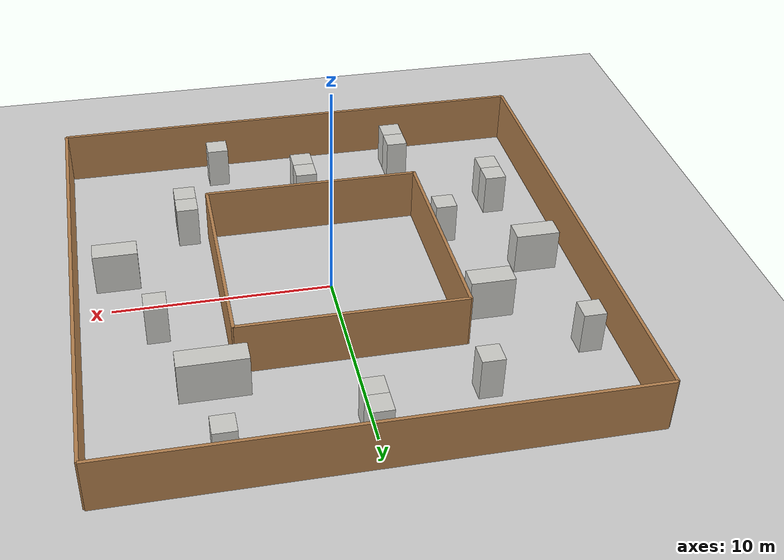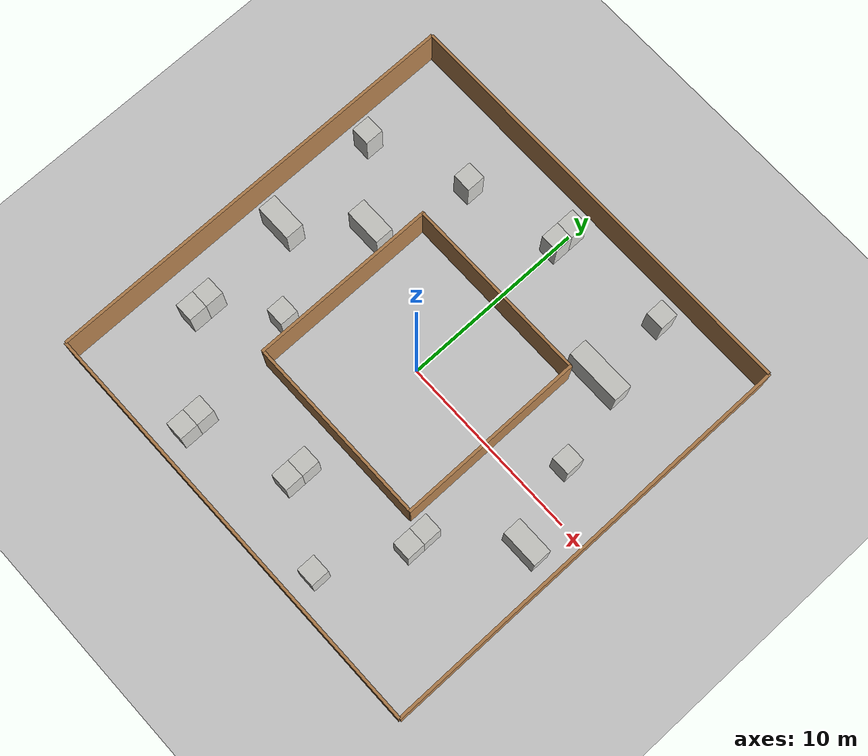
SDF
<sdf version="1.7">
 <world name="default">
  <light name="sun" type="directional">
   <pose>0 0 10 0 -0 0</pose>
   <diffuse>0.8 0.8 0.8 1</diffuse>
   <specular>0.2 0.2 0.2 1</specular>
   <attenuation>
    <range>1000</range>
    <constant>0.9</constant>
    <linear>0.01</linear>
    <quadratic>0.001</quadratic>
   </attenuation>
   <direction>-0.5 0.1 -0.9</direction>
   <spot><inner_angle>0</inner_angle><outer_angle>0</outer_angle><falloff>0</falloff></spot>
  </light>
  <model name="ground_plane">
   <static>1</static>
   <link name="link">
    <collision name="collision">
     <geometry><plane><normal>0 0 1</normal><size>100 100</size></plane></geometry>
     <surface>
      <contact><collide_bitmask>65535</collide_bitmask></contact>
      <friction><ode><mu>100</mu><mu2>50</mu2></ode></friction>
     </surface>
    </collision>
    <visual name="visual">
     <cast_shadows>0</cast_shadows>
     <geometry><plane><normal>0 0 1</normal><size>100 100</size></plane></geometry>
     <material>
      <script><uri>file://media/materials/scripts/gazebo.material</uri><name>Gazebo/Grey</name></script>
     </material>
    </visual>
   </link>
  </model>
  <gravity>0 0 -9.8</gravity>
  <magnetic_field>6e-06 2.3e-05 -4.2e-05</magnetic_field>
  <atmosphere type="adiabatic"/>
  <physics type="ode">
   <max_step_size>0.002</max_step_size>
   <real_time_factor>1</real_time_factor>
   <real_time_update_rate>500</real_time_update_rate>
  </physics>
  <scene><ambient>0.4 0.4 0.4 1</ambient><background>0.7 0.7 0.7 1</background><shadows>1</shadows></scene>
  <spherical_coordinates>
   <surface_model>EARTH_WGS84</surface_model>
   <latitude_deg>0</latitude_deg>
   <longitude_deg>0</longitude_deg>
   <elevation>0</elevation>
   <heading_deg>0</heading_deg>
  </spherical_coordinates>
  <model name="corridor">
   <link name="Wall_0">
    <collision name="Wall_0_Collision">
     <geometry><box><size>23.0 0.15 2.5</size></box></geometry>
     <pose>0 0 1.25 0 -0 0</pose>
    </collision>
    <visual name="Wall_0_Visual">
     <pose>0 0 1.25 0 -0 0</pose>
     <geometry><box><size>23.0 0.15 2.5</size></box></geometry>
     <material>
      <script><uri>file://media/materials/scripts/gazebo.material</uri><name>Gazebo/Wood</name></script>
      <ambient>1 1 1 1</ambient>
     </material>
     <meta><layer>0</layer></meta>
    </visual>
    <pose>0 11.5 0 0 -0 0</pose>
   </link>
   <link name="Wall_2">
    <collision name="Wall_2_Collision">
     <geometry><box><size>23.0 0.15 2.5</size></box></geometry>
     <pose>0 0 1.25 0 -0 0</pose>
    </collision>
    <visual name="Wall_2_Visual">
     <pose>0 0 1.25 0 -0 0</pose>
     <geometry><box><size>23.0 0.15 2.5</size></box></geometry>
     <material>
      <script><uri>file://media/materials/scripts/gazebo.material</uri><name>Gazebo/Wood</name></script>
      <ambient>1 1 1 1</ambient>
     </material>
     <meta><layer>0</layer></meta>
    </visual>
    <pose>0 -11.5 0 0 -0 0</pose>
   </link>
   <link name="Wall_4">
    <collision name="Wall_4_Collision">
     <geometry><box><size>23.0 0.15 2.5</size></box></geometry>
     <pose>0 0 1.25 0 -0 0</pose>
    </collision>
    <visual name="Wall_4_Visual">
     <pose>0 0 1.25 0 -0 0</pose>
     <geometry><box><size>23.0 0.15 2.5</size></box></geometry>
     <material>
      <script><uri>file://media/materials/scripts/gazebo.material</uri><name>Gazebo/Wood</name></script>
      <ambient>1 1 1 1</ambient>
     </material>
     <meta><layer>0</layer></meta>
    </visual>
    <pose>-11.5 0 0 0 -0 -1.5708</pose>
   </link>
   <link name="Wall_6">
    <collision name="Wall_6_Collision">
     <geometry><box><size>23.0 0.15 2.5</size></box></geometry>
     <pose>0 0 1.25 0 -0 0</pose>
    </collision>
    <visual name="Wall_6_Visual">
     <pose>0 0 1.25 0 -0 0</pose>
     <geometry><box><size>23.0 0.15 2.5</size></box></geometry>
     <material>
      <script><uri>file://media/materials/scripts/gazebo.material</uri><name>Gazebo/Wood</name></script>
      <ambient>1 1 1 1</ambient>
     </material>
     <meta><layer>0</layer></meta>
    </visual>
    <pose>11.5 0 0 0 -0 -1.5708</pose>
   </link>
   <static>1</static>
  </model>
  <model name="box_map_0">
   <pose>0.850 11.440 0 0 -0 0</pose>
   <link name="Wall_0">
    <collision name="Wall_0_Collision">
     <geometry><box><size>1.010 1.00 2.00</size></box></geometry>
     <pose>0 0 1.00 0 -0 0</pose>
    </collision>
    <visual name="Wall_0_Visual">
     <pose>0 0 1.00 0 -0 0</pose>
     <geometry><box><size>1.010 1.00 2.00</size></box></geometry>
     <material>
      <script><uri>file://media/materials/scripts/gazebo.material</uri><name>Gazebo/CeilingTiled</name></script>
      <ambient>0.921569 0.807843 0.615686 1</ambient>
     </material>
     <meta><layer>0</layer></meta>
    </visual>
    <pose>-0.85 -1.44 0 0 -0 0</pose>
   </link>
   <static>1</static>
  </model>
  <model name="box_map_1">
   <pose>6.910 11.440 0 0 -0 0</pose>
   <link name="Wall_0">
    <collision name="Wall_0_Collision">
     <geometry><box><size>1.010 1.00 2.00</size></box></geometry>
     <pose>0 0 1.00 0 -0 0</pose>
    </collision>
    <visual name="Wall_0_Visual">
     <pose>0 0 1.00 0 -0 0</pose>
     <geometry><box><size>1.010 1.00 2.00</size></box></geometry>
     <material>
      <script><uri>file://media/materials/scripts/gazebo.material</uri><name>Gazebo/CeilingTiled</name></script>
      <ambient>0.921569 0.807843 0.615686 1</ambient>
     </material>
     <meta><layer>0</layer></meta>
    </visual>
    <pose>-0.85 -1.44 0 0 -0 0</pose>
   </link>
   <static>1</static>
  </model>
  <model name="box_map_2">
   <pose>0.850 10.440 0 0 -0 0</pose>
   <link name="Wall_0">
    <collision name="Wall_0_Collision">
     <geometry><box><size>1.010 1.00 2.00</size></box></geometry>
     <pose>0 0 1.00 0 -0 0</pose>
    </collision>
    <visual name="Wall_0_Visual">
     <pose>0 0 1.00 0 -0 0</pose>
     <geometry><box><size>1.010 1.00 2.00</size></box></geometry>
     <material>
      <script><uri>file://media/materials/scripts/gazebo.material</uri><name>Gazebo/CeilingTiled</name></script>
      <ambient>0.921569 0.807843 0.615686 1</ambient>
     </material>
     <meta><layer>0</layer></meta>
    </visual>
    <pose>-0.85 -1.44 0 0 -0 0</pose>
   </link>
   <static>1</static>
  </model>
  <model name="box_map_3">
   <pose>-4.200 9.440 0 0 -0 0</pose>
   <link name="Wall_0">
    <collision name="Wall_0_Collision">
     <geometry><box><size>1.010 1.00 2.00</size></box></geometry>
     <pose>0 0 1.00 0 -0 0</pose>
    </collision>
    <visual name="Wall_0_Visual">
     <pose>0 0 1.00 0 -0 0</pose>
     <geometry><box><size>1.010 1.00 2.00</size></box></geometry>
     <material>
      <script><uri>file://media/materials/scripts/gazebo.material</uri><name>Gazebo/CeilingTiled</name></script>
      <ambient>0.921569 0.807843 0.615686 1</ambient>
     </material>
     <meta><layer>0</layer></meta>
    </visual>
    <pose>-0.85 -1.44 0 0 -0 0</pose>
   </link>
   <static>1</static>
  </model>
  <model name="box_map_4">
   <pose>-9.250 7.440 0 0 -0 0</pose>
   <link name="Wall_0">
    <collision name="Wall_0_Collision">
     <geometry><box><size>1.010 1.00 2.00</size></box></geometry>
     <pose>0 0 1.00 0 -0 0</pose>
    </collision>
    <visual name="Wall_0_Visual">
     <pose>0 0 1.00 0 -0 0</pose>
     <geometry><box><size>1.010 1.00 2.00</size></box></geometry>
     <material>
      <script><uri>file://media/materials/scripts/gazebo.material</uri><name>Gazebo/CeilingTiled</name></script>
      <ambient>0.921569 0.807843 0.615686 1</ambient>
     </material>
     <meta><layer>0</layer></meta>
    </visual>
    <pose>-0.85 -1.44 0 0 -0 0</pose>
   </link>
   <static>1</static>
  </model>
  <model name="box_map_5">
   <pose>6.910 7.440 0 0 -0 0</pose>
   <link name="Wall_0">
    <collision name="Wall_0_Collision">
     <geometry><box><size>3.030 1.00 2.00</size></box></geometry>
     <pose>0 0 1.00 0 -0 0</pose>
    </collision>
    <visual name="Wall_0_Visual">
     <pose>0 0 1.00 0 -0 0</pose>
     <geometry><box><size>3.030 1.00 2.00</size></box></geometry>
     <material>
      <script><uri>file://media/materials/scripts/gazebo.material</uri><name>Gazebo/CeilingTiled</name></script>
      <ambient>0.921569 0.807843 0.615686 1</ambient>
     </material>
     <meta><layer>0</layer></meta>
    </visual>
    <pose>-0.85 -1.44 0 0 -0 0</pose>
   </link>
   <static>1</static>
  </model>
  <model name="box_map_6">
   <pose>-5.715 4.440 0 0 -0 0</pose>
   <link name="Wall_0">
    <collision name="Wall_0_Collision">
     <geometry><box><size>2.020 1.00 2.00</size></box></geometry>
     <pose>0 0 1.00 0 -0 0</pose>
    </collision>
    <visual name="Wall_0_Visual">
     <pose>0 0 1.00 0 -0 0</pose>
     <geometry><box><size>2.020 1.00 2.00</size></box></geometry>
     <material>
      <script><uri>file://media/materials/scripts/gazebo.material</uri><name>Gazebo/CeilingTiled</name></script>
      <ambient>0.921569 0.807843 0.615686 1</ambient>
     </material>
     <meta><layer>0</layer></meta>
    </visual>
    <pose>-0.85 -1.44 0 0 -0 0</pose>
   </link>
   <static>1</static>
  </model>
  <model name="box_map_7">
   <pose>8.930 3.440 0 0 -0 0</pose>
   <link name="Wall_0">
    <collision name="Wall_0_Collision">
     <geometry><box><size>1.010 1.00 2.00</size></box></geometry>
     <pose>0 0 1.00 0 -0 0</pose>
    </collision>
    <visual name="Wall_0_Visual">
     <pose>0 0 1.00 0 -0 0</pose>
     <geometry><box><size>1.010 1.00 2.00</size></box></geometry>
     <material>
      <script><uri>file://media/materials/scripts/gazebo.material</uri><name>Gazebo/CeilingTiled</name></script>
      <ambient>0.921569 0.807843 0.615686 1</ambient>
     </material>
     <meta><layer>0</layer></meta>
    </visual>
    <pose>-0.85 -1.44 0 0 -0 0</pose>
   </link>
   <static>1</static>
  </model>
  <model name="box_map_8">
   <pose>-8.745 1.440 0 0 -0 0</pose>
   <link name="Wall_0">
    <collision name="Wall_0_Collision">
     <geometry><box><size>2.020 1.00 2.00</size></box></geometry>
     <pose>0 0 1.00 0 -0 0</pose>
    </collision>
    <visual name="Wall_0_Visual">
     <pose>0 0 1.00 0 -0 0</pose>
     <geometry><box><size>2.020 1.00 2.00</size></box></geometry>
     <material>
      <script><uri>file://media/materials/scripts/gazebo.material</uri><name>Gazebo/CeilingTiled</name></script>
      <ambient>0.921569 0.807843 0.615686 1</ambient>
     </material>
     <meta><layer>0</layer></meta>
    </visual>
    <pose>-0.85 -1.44 0 0 -0 0</pose>
   </link>
   <static>1</static>
  </model>
  <model name="box_map_9">
   <pose>10.445 -0.560 0 0 -0 0</pose>
   <link name="Wall_0">
    <collision name="Wall_0_Collision">
     <geometry><box><size>2.020 1.00 2.00</size></box></geometry>
     <pose>0 0 1.00 0 -0 0</pose>
    </collision>
    <visual name="Wall_0_Visual">
     <pose>0 0 1.00 0 -0 0</pose>
     <geometry><box><size>2.020 1.00 2.00</size></box></geometry>
     <material>
      <script><uri>file://media/materials/scripts/gazebo.material</uri><name>Gazebo/CeilingTiled</name></script>
      <ambient>0.921569 0.807843 0.615686 1</ambient>
     </material>
     <meta><layer>0</layer></meta>
    </visual>
    <pose>-0.85 -1.44 0 0 -0 0</pose>
   </link>
   <static>1</static>
  </model>
  <model name="box_map_10">
   <pose>-5.210 -1.560 0 0 -0 0</pose>
   <link name="Wall_0">
    <collision name="Wall_0_Collision">
     <geometry><box><size>1.010 1.00 2.00</size></box></geometry>
     <pose>0 0 1.00 0 -0 0</pose>
    </collision>
    <visual name="Wall_0_Visual">
     <pose>0 0 1.00 0 -0 0</pose>
     <geometry><box><size>1.010 1.00 2.00</size></box></geometry>
     <material>
      <script><uri>file://media/materials/scripts/gazebo.material</uri><name>Gazebo/CeilingTiled</name></script>
      <ambient>0.921569 0.807843 0.615686 1</ambient>
     </material>
     <meta><layer>0</layer></meta>
    </visual>
    <pose>-0.85 -1.44 0 0 -0 0</pose>
   </link>
   <static>1</static>
  </model>
  <model name="box_map_11">
   <pose>-8.240 -3.560 0 0 -0 0</pose>
   <link name="Wall_0">
    <collision name="Wall_0_Collision">
     <geometry><box><size>1.010 1.00 2.00</size></box></geometry>
     <pose>0 0 1.00 0 -0 0</pose>
    </collision>
    <visual name="Wall_0_Visual">
     <pose>0 0 1.00 0 -0 0</pose>
     <geometry><box><size>1.010 1.00 2.00</size></box></geometry>
     <material>
      <script><uri>file://media/materials/scripts/gazebo.material</uri><name>Gazebo/CeilingTiled</name></script>
      <ambient>0.921569 0.807843 0.615686 1</ambient>
     </material>
     <meta><layer>0</layer></meta>
    </visual>
    <pose>-0.85 -1.44 0 0 -0 0</pose>
   </link>
   <static>1</static>
  </model>
  <model name="box_map_12">
   <pose>6.910 -3.560 0 0 -0 0</pose>
   <link name="Wall_0">
    <collision name="Wall_0_Collision">
     <geometry><box><size>1.010 1.00 2.00</size></box></geometry>
     <pose>0 0 1.00 0 -0 0</pose>
    </collision>
    <visual name="Wall_0_Visual">
     <pose>0 0 1.00 0 -0 0</pose>
     <geometry><box><size>1.010 1.00 2.00</size></box></geometry>
     <material>
      <script><uri>file://media/materials/scripts/gazebo.material</uri><name>Gazebo/CeilingTiled</name></script>
      <ambient>0.921569 0.807843 0.615686 1</ambient>
     </material>
     <meta><layer>0</layer></meta>
    </visual>
    <pose>-0.85 -1.44 0 0 -0 0</pose>
   </link>
   <static>1</static>
  </model>
  <model name="box_map_13">
   <pose>-8.240 -4.560 0 0 -0 0</pose>
   <link name="Wall_0">
    <collision name="Wall_0_Collision">
     <geometry><box><size>1.010 1.00 2.00</size></box></geometry>
     <pose>0 0 1.00 0 -0 0</pose>
    </collision>
    <visual name="Wall_0_Visual">
     <pose>0 0 1.00 0 -0 0</pose>
     <geometry><box><size>1.010 1.00 2.00</size></box></geometry>
     <material>
      <script><uri>file://media/materials/scripts/gazebo.material</uri><name>Gazebo/CeilingTiled</name></script>
      <ambient>0.921569 0.807843 0.615686 1</ambient>
     </material>
     <meta><layer>0</layer></meta>
    </visual>
    <pose>-0.85 -1.44 0 0 -0 0</pose>
   </link>
   <static>1</static>
  </model>
  <model name="box_map_14">
   <pose>6.910 -4.560 0 0 -0 0</pose>
   <link name="Wall_0">
    <collision name="Wall_0_Collision">
     <geometry><box><size>1.010 1.00 2.00</size></box></geometry>
     <pose>0 0 1.00 0 -0 0</pose>
    </collision>
    <visual name="Wall_0_Visual">
     <pose>0 0 1.00 0 -0 0</pose>
     <geometry><box><size>1.010 1.00 2.00</size></box></geometry>
     <material>
      <script><uri>file://media/materials/scripts/gazebo.material</uri><name>Gazebo/CeilingTiled</name></script>
      <ambient>0.921569 0.807843 0.615686 1</ambient>
     </material>
     <meta><layer>0</layer></meta>
    </visual>
    <pose>-0.85 -1.44 0 0 -0 0</pose>
   </link>
   <static>1</static>
  </model>
  <model name="box_map_15">
   <pose>0.850 -5.560 0 0 -0 0</pose>
   <link name="Wall_0">
    <collision name="Wall_0_Collision">
     <geometry><box><size>1.010 1.00 2.00</size></box></geometry>
     <pose>0 0 1.00 0 -0 0</pose>
    </collision>
    <visual name="Wall_0_Visual">
     <pose>0 0 1.00 0 -0 0</pose>
     <geometry><box><size>1.010 1.00 2.00</size></box></geometry>
     <material>
      <script><uri>file://media/materials/scripts/gazebo.material</uri><name>Gazebo/CeilingTiled</name></script>
      <ambient>0.921569 0.807843 0.615686 1</ambient>
     </material>
     <meta><layer>0</layer></meta>
    </visual>
    <pose>-0.85 -1.44 0 0 -0 0</pose>
   </link>
   <static>1</static>
  </model>
  <model name="box_map_16">
   <pose>0.850 -6.560 0 0 -0 0</pose>
   <link name="Wall_0">
    <collision name="Wall_0_Collision">
     <geometry><box><size>1.010 1.00 2.00</size></box></geometry>
     <pose>0 0 1.00 0 -0 0</pose>
    </collision>
    <visual name="Wall_0_Visual">
     <pose>0 0 1.00 0 -0 0</pose>
     <geometry><box><size>1.010 1.00 2.00</size></box></geometry>
     <material>
      <script><uri>file://media/materials/scripts/gazebo.material</uri><name>Gazebo/CeilingTiled</name></script>
      <ambient>0.921569 0.807843 0.615686 1</ambient>
     </material>
     <meta><layer>0</layer></meta>
    </visual>
    <pose>-0.85 -1.44 0 0 -0 0</pose>
   </link>
   <static>1</static>
  </model>
  <model name="box_map_17">
   <pose>-4.200 -7.560 0 0 -0 0</pose>
   <link name="Wall_0">
    <collision name="Wall_0_Collision">
     <geometry><box><size>1.010 1.00 2.00</size></box></geometry>
     <pose>0 0 1.00 0 -0 0</pose>
    </collision>
    <visual name="Wall_0_Visual">
     <pose>0 0 1.00 0 -0 0</pose>
     <geometry><box><size>1.010 1.00 2.00</size></box></geometry>
     <material>
      <script><uri>file://media/materials/scripts/gazebo.material</uri><name>Gazebo/CeilingTiled</name></script>
      <ambient>0.921569 0.807843 0.615686 1</ambient>
     </material>
     <meta><layer>0</layer></meta>
    </visual>
    <pose>-0.85 -1.44 0 0 -0 0</pose>
   </link>
   <static>1</static>
  </model>
  <model name="box_map_18">
   <pose>-4.200 -8.560 0 0 -0 0</pose>
   <link name="Wall_0">
    <collision name="Wall_0_Collision">
     <geometry><box><size>1.010 1.00 2.00</size></box></geometry>
     <pose>0 0 1.00 0 -0 0</pose>
    </collision>
    <visual name="Wall_0_Visual">
     <pose>0 0 1.00 0 -0 0</pose>
     <geometry><box><size>1.010 1.00 2.00</size></box></geometry>
     <material>
      <script><uri>file://media/materials/scripts/gazebo.material</uri><name>Gazebo/CeilingTiled</name></script>
      <ambient>0.921569 0.807843 0.615686 1</ambient>
     </material>
     <meta><layer>0</layer></meta>
    </visual>
    <pose>-0.85 -1.44 0 0 -0 0</pose>
   </link>
   <static>1</static>
  </model>
  <model name="box_map_19">
   <pose>4.890 -8.560 0 0 -0 0</pose>
   <link name="Wall_0">
    <collision name="Wall_0_Collision">
     <geometry><box><size>1.010 1.00 2.00</size></box></geometry>
     <pose>0 0 1.00 0 -0 0</pose>
    </collision>
    <visual name="Wall_0_Visual">
     <pose>0 0 1.00 0 -0 0</pose>
     <geometry><box><size>1.010 1.00 2.00</size></box></geometry>
     <material>
      <script><uri>file://media/materials/scripts/gazebo.material</uri><name>Gazebo/CeilingTiled</name></script>
      <ambient>0.921569 0.807843 0.615686 1</ambient>
     </material>
     <meta><layer>0</layer></meta>
    </visual>
    <pose>-0.85 -1.44 0 0 -0 0</pose>
   </link>
   <static>1</static>
  </model>
  <model name="box_map_20">
   <pose>0.850 6.440 0 0 -0 0</pose>
   <link name="Wall_0">
    <collision name="Wall_0_Collision">
     <geometry><box><size>10.100 0.15 2.50</size></box></geometry>
     <pose>0 0 1.25 0 -0 0</pose>
    </collision>
    <visual name="Wall_0_Visual">
     <pose>0 0 1.25 0 -0 0</pose>
     <geometry><box><size>10.100 0.15 2.50</size></box></geometry>
     <material>
      <script><uri>file://media/materials/scripts/gazebo.material</uri><name>Gazebo/Wood</name></script>
      <ambient>0.921569 0.807843 0.615686 1</ambient>
     </material>
     <meta><layer>0</layer></meta>
    </visual>
    <pose>-0.85 -1.44 0 0 -0 0</pose>
   </link>
   <static>1</static>
  </model>
  <model name="box_map_21">
   <pose>0.850 -3.560 0 0 -0 0</pose>
   <link name="Wall_0">
    <collision name="Wall_0_Collision">
     <geometry><box><size>10.100 0.15 2.50</size></box></geometry>
     <pose>0 0 1.25 0 -0 0</pose>
    </collision>
    <visual name="Wall_0_Visual">
     <pose>0 0 1.25 0 -0 0</pose>
     <geometry><box><size>10.100 0.15 2.50</size></box></geometry>
     <material>
      <script><uri>file://media/materials/scripts/gazebo.material</uri><name>Gazebo/Wood</name></script>
      <ambient>0.921569 0.807843 0.615686 1</ambient>
     </material>
     <meta><layer>0</layer></meta>
    </visual>
    <pose>-0.85 -1.44 0 0 -0 0</pose>
   </link>
   <static>1</static>
  </model>
  <model name="box_map_22">
   <pose>-4.200 1.440 0 0 -0 0</pose>
   <link name="Wall_0">
    <collision name="Wall_0_Collision">
     <geometry><box><size>10.100 0.15 2.50</size></box></geometry>
     <pose>0 0 1.25 0 -0 0</pose>
    </collision>
    <visual name="Wall_0_Visual">
     <pose>0 0 1.25 0 -0 0</pose>
     <geometry><box><size>10.100 0.15 2.50</size></box></geometry>
     <material>
      <script><uri>file://media/materials/scripts/gazebo.material</uri><name>Gazebo/Wood</name></script>
      <ambient>0.921569 0.807843 0.615686 1</ambient>
     </material>
     <meta><layer>0</layer></meta>
    </visual>
    <pose>-0.85 -1.44 0 0 -0 -1.5708</pose>
   </link>
   <static>1</static>
  </model>
  <model name="box_map_23">
   <pose>5.900 1.440 0 0 -0 0</pose>
   <link name="Wall_0">
    <collision name="Wall_0_Collision">
     <geometry><box><size>10.100 0.15 2.50</size></box></geometry>
     <pose>0 0 1.25 0 -0 0</pose>
    </collision>
    <visual name="Wall_0_Visual">
     <pose>0 0 1.25 0 -0 0</pose>
     <geometry><box><size>10.100 0.15 2.50</size></box></geometry>
     <material>
      <script><uri>file://media/materials/scripts/gazebo.material</uri><name>Gazebo/Wood</name></script>
      <ambient>0.921569 0.807843 0.615686 1</ambient>
     </material>
     <meta><layer>0</layer></meta>
    </visual>
    <pose>-0.85 -1.44 0 0 -0 -1.5708</pose>
   </link>
   <static>1</static>
  </model>
 </world>
</sdf>
